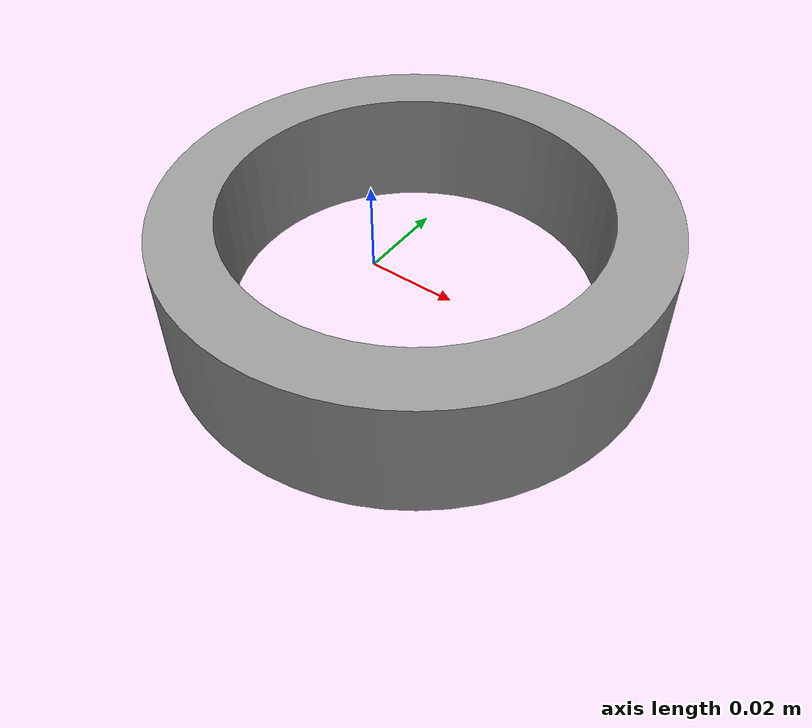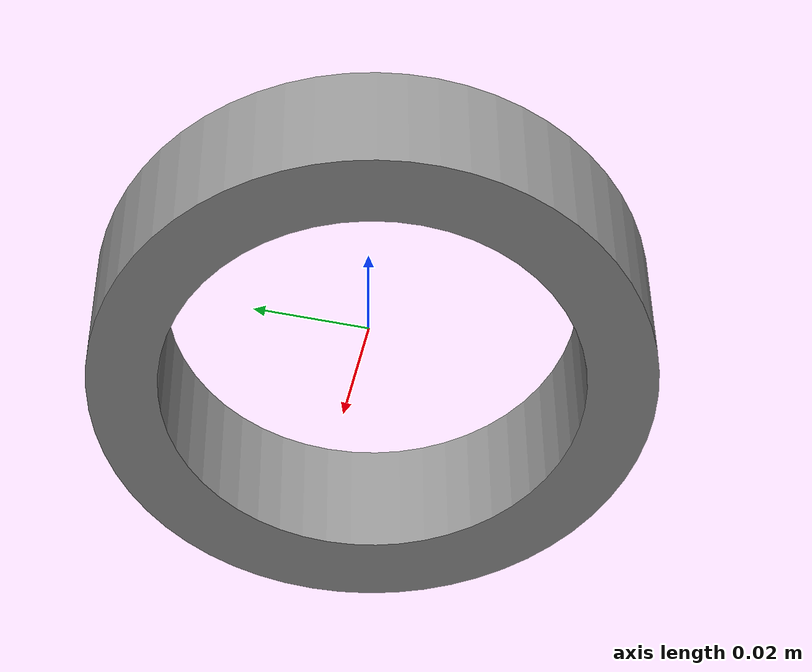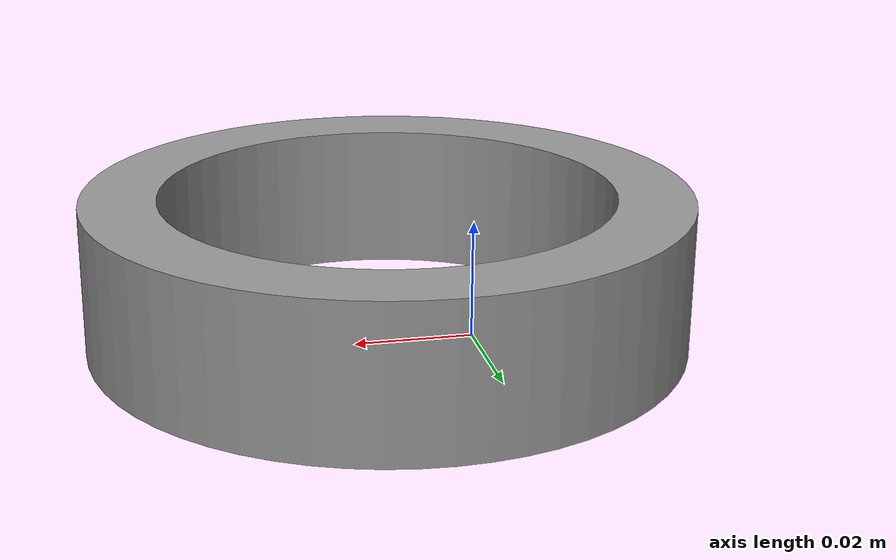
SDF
<?xml version="1.0" ?>
<sdf version="1.5">
  <!-- Model -->
	<model name="taperoll">
		<static>0</static>
		<link name="link">
			<inertial>
				<pose>0.0 0.0 0.0 0.0 0.0 0.0</pose>
				<mass>0.1</mass>
				<inertia>
					<ixx>0.00039</ixx>
					<ixy>0.0</ixy>
					<ixz>0.0</ixz>
					<iyy>0.00039</iyy>
					<iyz>0.0</iyz>
					<izz>0.0078125</izz>
					</inertia>
				</inertial>
				<collision name="collision">
					<geometry>
						<mesh>
							<uri>model://meshes/new_tape_roll.dae</uri>
						</mesh>
					</geometry>
				</collision>
				<visual name="visual">
					<geometry>
						<mesh>
							<uri>model://meshes/new_tape_roll.dae</uri>
						</mesh>
					</geometry>
				</visual>
			</link>
		</model>
</sdf>
